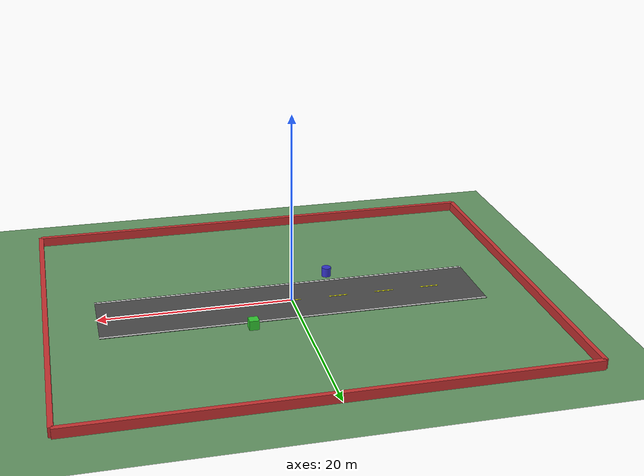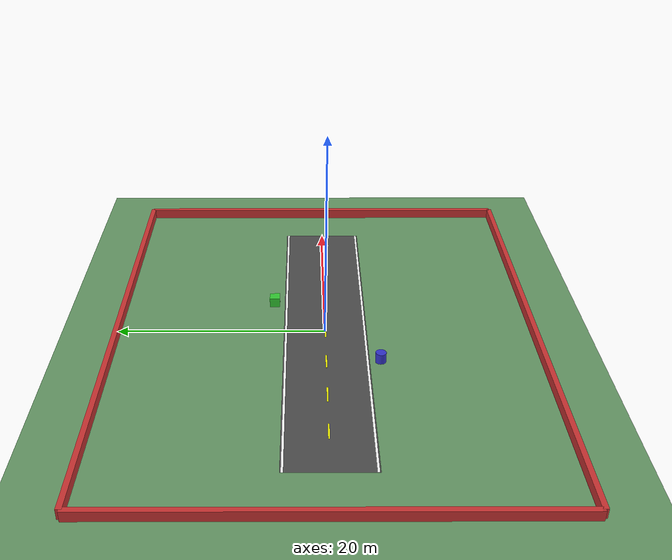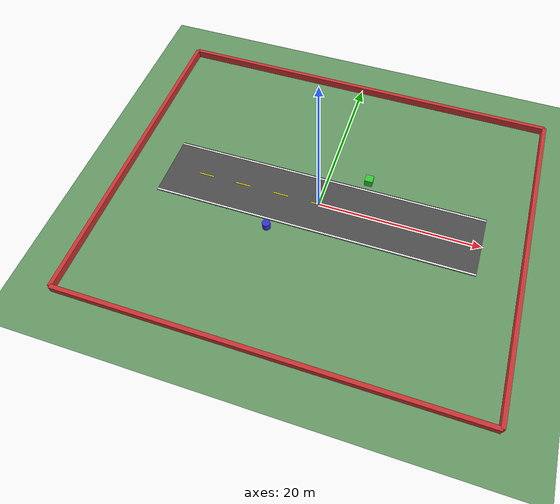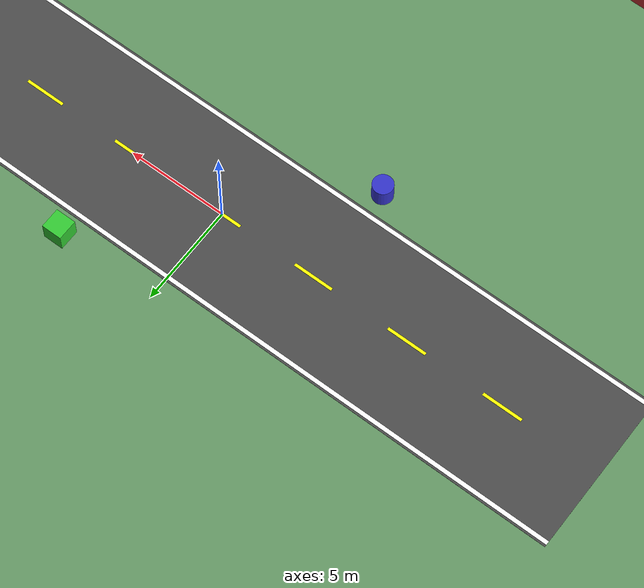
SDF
<?xml version="1.0" ?>
<sdf version="1.9">
  <world name="test_track">

    <!-- Physics -->
    <physics name="1ms" type="ignored">
      <max_step_size>0.001</max_step_size>
      <real_time_factor>1.0</real_time_factor>
    </physics>

    <!-- Plugins -->
    <plugin
      filename="gz-sim-physics-system"
      name="gz::sim::systems::Physics">
    </plugin>
    <plugin
      filename="gz-sim-user-commands-system"
      name="gz::sim::systems::UserCommands">
    </plugin>
    <plugin
      filename="gz-sim-scene-broadcaster-system"
      name="gz::sim::systems::SceneBroadcaster">
    </plugin>
    <plugin
      filename="gz-sim-sensors-system"
      name="gz::sim::systems::Sensors">
      <render_engine>ogre2</render_engine>
    </plugin>

    <!-- Lighting -->
    <light type="directional" name="sun">
      <cast_shadows>true</cast_shadows>
      <pose>0 0 10 0 0 0</pose>
      <diffuse>0.8 0.8 0.8 1</diffuse>
      <specular>0.2 0.2 0.2 1</specular>
      <attenuation>
        <range>1000</range>
        <constant>0.9</constant>
        <linear>0.01</linear>
        <quadratic>0.001</quadratic>
      </attenuation>
      <direction>-0.5 0.1 -0.9</direction>
    </light>

    <!-- Ground Plane (grass/dirt) -->
    <model name="ground_plane">
      <static>true</static>
      <link name="link">
        <collision name="collision">
          <geometry>
            <plane>
              <normal>0 0 1</normal>
              <size>100 100</size>
            </plane>
          </geometry>
        </collision>
        <visual name="visual">
          <geometry>
            <plane>
              <normal>0 0 1</normal>
              <size>100 100</size>
            </plane>
          </geometry>
          <material>
            <ambient>0.3 0.5 0.3 1</ambient>
            <diffuse>0.4 0.6 0.4 1</diffuse>
            <specular>0.01 0.01 0.01 1</specular>
          </material>
        </visual>
      </link>
    </model>

    <!-- Road Surface (dark asphalt) -->
    <model name="road">
      <static>true</static>
      <pose>0 0 0.01 0 0 0</pose>
      <link name="link">
        <visual name="visual">
          <geometry>
            <box>
              <size>40 8 0.01</size>
            </box>
          </geometry>
          <material>
            <ambient>0.2 0.2 0.2 1</ambient>
            <diffuse>0.3 0.3 0.3 1</diffuse>
            <specular>0.1 0.1 0.1 1</specular>
          </material>
        </visual>
      </link>
    </model>

    <!-- Left Lane Edge (solid white line) -->
    <model name="lane_left_edge">
      <static>true</static>
      <pose>0 3.8 0.02 0 0 0</pose>
      <link name="link">
        <visual name="visual">
          <geometry>
            <box>
              <size>40 0.2 0.01</size>
            </box>
          </geometry>
          <material>
            <ambient>1 1 1 1</ambient>
            <diffuse>1 1 1 1</diffuse>
          </material>
        </visual>
      </link>
    </model>

    <!-- Right Lane Edge (solid white line) -->
    <model name="lane_right_edge">
      <static>true</static>
      <pose>0 -3.8 0.02 0 0 0</pose>
      <link name="link">
        <visual name="visual">
          <geometry>
            <box>
              <size>40 0.2 0.01</size>
            </box>
          </geometry>
          <material>
            <ambient>1 1 1 1</ambient>
            <diffuse>1 1 1 1</diffuse>
          </material>
        </visual>
      </link>
    </model>

    <!-- Center Lane Markings (dashed yellow line) -->
    <model name="lane_center_1">
      <static>true</static>
      <pose>-15 0 0.02 0 0 0</pose>
      <link name="link">
        <visual name="visual">
          <geometry>
            <box>
              <size>2 0.15 0.01</size>
            </box>
          </geometry>
          <material>
            <ambient>1 1 0 1</ambient>
            <diffuse>1 1 0 1</diffuse>
          </material>
        </visual>
      </link>
    </model>

    <model name="lane_center_2">
      <static>true</static>
      <pose>-10 0 0.02 0 0 0</pose>
      <link name="link">
        <visual name="visual">
          <geometry>
            <box>
              <size>2 0.15 0.01</size>
            </box>
          </geometry>
          <material>
            <ambient>1 1 0 1</ambient>
            <diffuse>1 1 0 1</diffuse>
          </material>
        </visual>
      </link>
    </model>

    <model name="lane_center_3">
      <static>true</static>
      <pose>-5 0 0.02 0 0 0</pose>
      <link name="link">
        <visual name="visual">
          <geometry>
            <box>
              <size>2 0.15 0.01</size>
            </box>
          </geometry>
          <material>
            <ambient>1 1 0 1</ambient>
            <diffuse>1 1 0 1</diffuse>
          </material>
        </visual>
      </link>
    </model>

    <model name="lane_center_4">
      <static>true</static>
      <pose>0 0 0.02 0 0 0</pose>
      <link name="link">
        <visual name="visual">
          <geometry>
            <box>
              <size>2 0.15 0.01</size>
            </box>
          </geometry>
          <material>
            <ambient>1 1 0 1</ambient>
            <diffuse>1 1 0 1</diffuse>
          </material>
        </visual>
      </link>
    </model>

    <model name="lane_center_5">
      <static>true</static>
      <pose>5 0 0.02 0 0 0</pose>
      <link name="link">
        <visual name="visual">
          <geometry>
            <box>
              <size>2 0.15 0.01</size>
            </box>
          </geometry>
          <material>
            <ambient>1 1 0 1</ambient>
            <diffuse>1 1 0 1</diffuse>
          </material>
        </visual>
      </link>
    </model>

    <model name="lane_center_6">
      <static>true</static>
      <pose>10 0 0.02 0 0 0</pose>
      <link name="link">
        <visual name="visual">
          <geometry>
            <box>
              <size>2 0.15 0.01</size>
            </box>
          </geometry>
          <material>
            <ambient>1 1 0 1</ambient>
            <diffuse>1 1 0 1</diffuse>
          </material>
        </visual>
      </link>
    </model>

    <model name="lane_center_7">
      <static>true</static>
      <pose>15 0 0.02 0 0 0</pose>
      <link name="link">
        <visual name="visual">
          <geometry>
            <box>
              <size>2 0.15 0.01</size>
            </box>
          </geometry>
          <material>
            <ambient>1 1 0 1</ambient>
            <diffuse>1 1 0 1</diffuse>
          </material>
        </visual>
      </link>
    </model>

    <!-- Simple Test Track (rectangular loop) -->
    <!-- Outer walls -->
    <model name="wall_north">
      <static>true</static>
      <pose>0 20 0.5 0 0 0</pose>
      <link name="link">
        <collision name="collision">
          <geometry>
            <box>
              <size>50 0.5 1</size>
            </box>
          </geometry>
        </collision>
        <visual name="visual">
          <geometry>
            <box>
              <size>50 0.5 1</size>
            </box>
          </geometry>
          <material>
            <ambient>0.8 0.2 0.2 1</ambient>
            <diffuse>0.8 0.2 0.2 1</diffuse>
          </material>
        </visual>
      </link>
    </model>

    <model name="wall_south">
      <static>true</static>
      <pose>0 -20 0.5 0 0 0</pose>
      <link name="link">
        <collision name="collision">
          <geometry>
            <box>
              <size>50 0.5 1</size>
            </box>
          </geometry>
        </collision>
        <visual name="visual">
          <geometry>
            <box>
              <size>50 0.5 1</size>
            </box>
          </geometry>
          <material>
            <ambient>0.8 0.2 0.2 1</ambient>
            <diffuse>0.8 0.2 0.2 1</diffuse>
          </material>
        </visual>
      </link>
    </model>

    <model name="wall_east">
      <static>true</static>
      <pose>25 0 0.5 0 0 0</pose>
      <link name="link">
        <collision name="collision">
          <geometry>
            <box>
              <size>0.5 40 1</size>
            </box>
          </geometry>
        </collision>
        <visual name="visual">
          <geometry>
            <box>
              <size>0.5 40 1</size>
            </box>
          </geometry>
          <material>
            <ambient>0.8 0.2 0.2 1</ambient>
            <diffuse>0.8 0.2 0.2 1</diffuse>
          </material>
        </visual>
      </link>
    </model>

    <model name="wall_west">
      <static>true</static>
      <pose>-25 0 0.5 0 0 0</pose>
      <link name="link">
        <collision name="collision">
          <geometry>
            <box>
              <size>0.5 40 1</size>
            </box>
          </geometry>
        </collision>
        <visual name="visual">
          <geometry>
            <box>
              <size>0.5 40 1</size>
            </box>
          </geometry>
          <material>
            <ambient>0.8 0.2 0.2 1</ambient>
            <diffuse>0.8 0.2 0.2 1</diffuse>
          </material>
        </visual>
      </link>
    </model>

    <!-- Some obstacles for testing -->
    <model name="obstacle_1">
      <static>true</static>
      <pose>5 5 0.5 0 0 0</pose>
      <link name="link">
        <collision name="collision">
          <geometry>
            <box>
              <size>1 1 1</size>
            </box>
          </geometry>
        </collision>
        <visual name="visual">
          <geometry>
            <box>
              <size>1 1 1</size>
            </box>
          </geometry>
          <material>
            <ambient>0.2 0.8 0.2 1</ambient>
            <diffuse>0.2 0.8 0.2 1</diffuse>
          </material>
        </visual>
      </link>
    </model>

    <model name="obstacle_2">
      <static>true</static>
      <pose>-5 -5 0.5 0 0 0</pose>
      <link name="link">
        <collision name="collision">
          <geometry>
            <cylinder>
              <radius>0.5</radius>
              <length>1.0</length>
            </cylinder>
          </geometry>
        </collision>
        <visual name="visual">
          <geometry>
            <cylinder>
              <radius>0.5</radius>
              <length>1.0</length>
            </cylinder>
          </geometry>
          <material>
            <ambient>0.2 0.2 0.8 1</ambient>
            <diffuse>0.2 0.2 0.8 1</diffuse>
          </material>
        </visual>
      </link>
    </model>

  </world>
</sdf>
